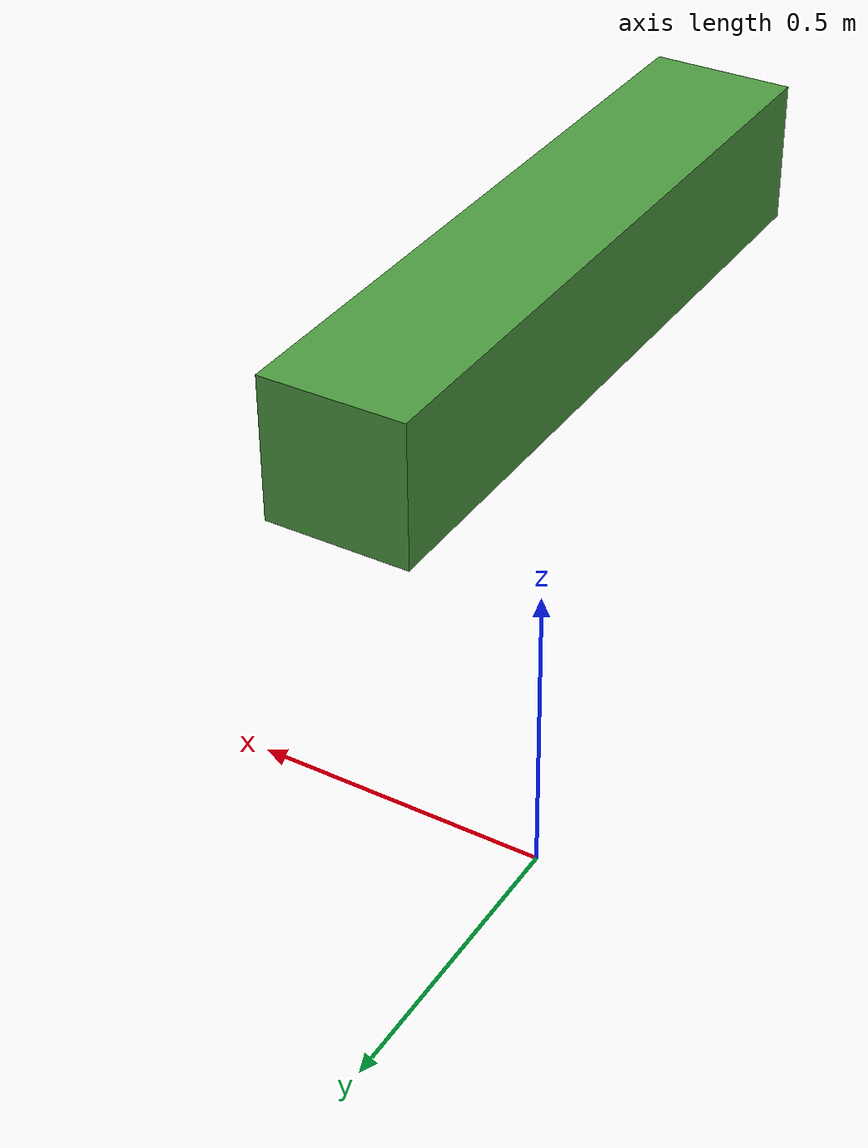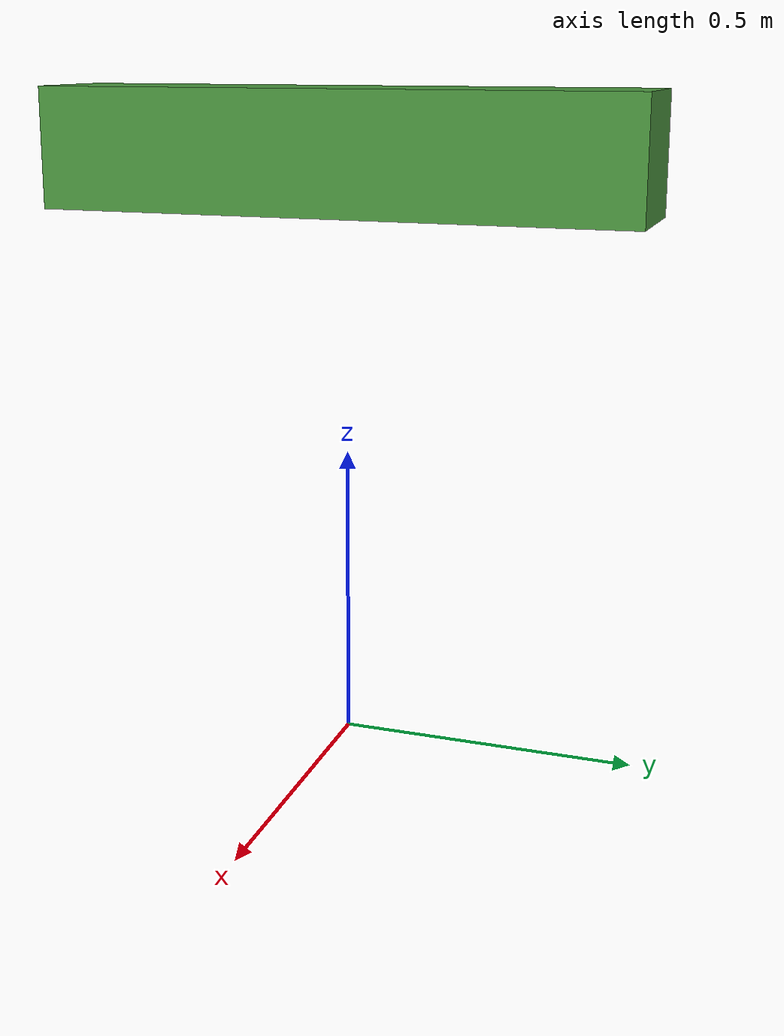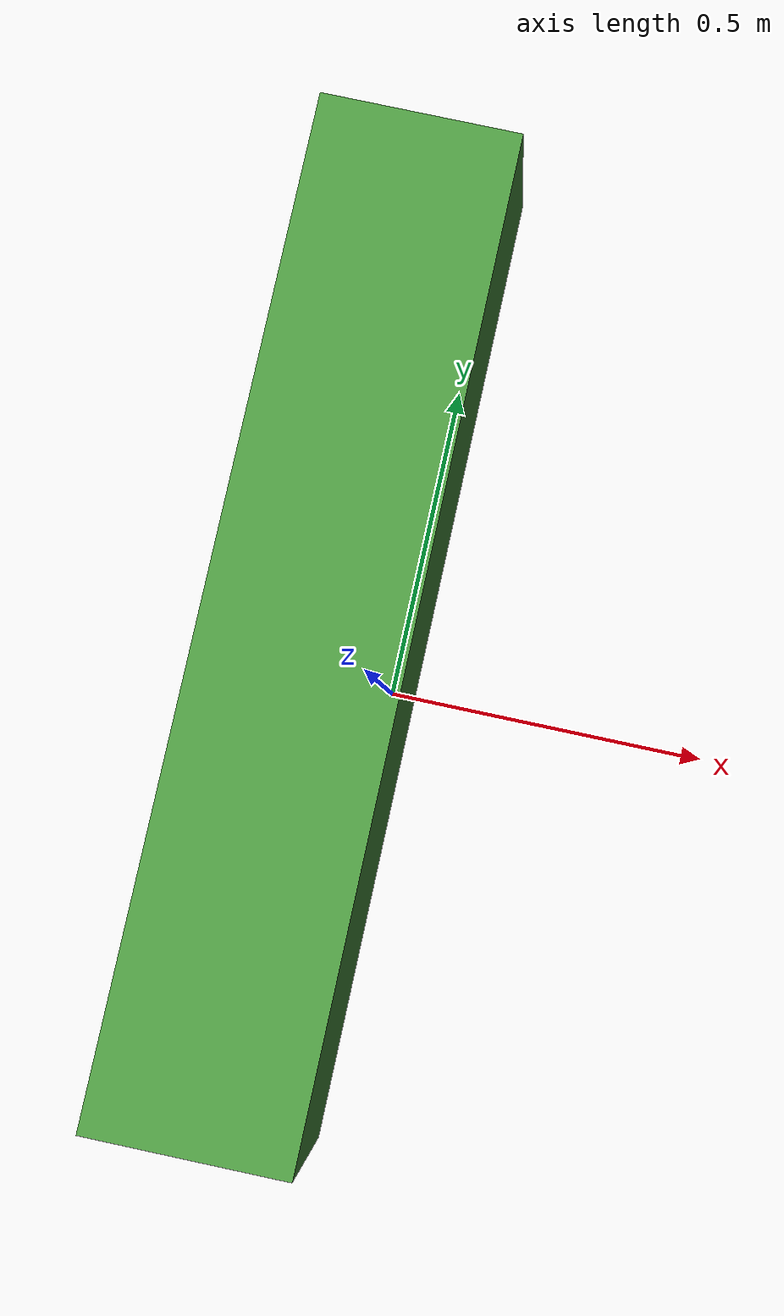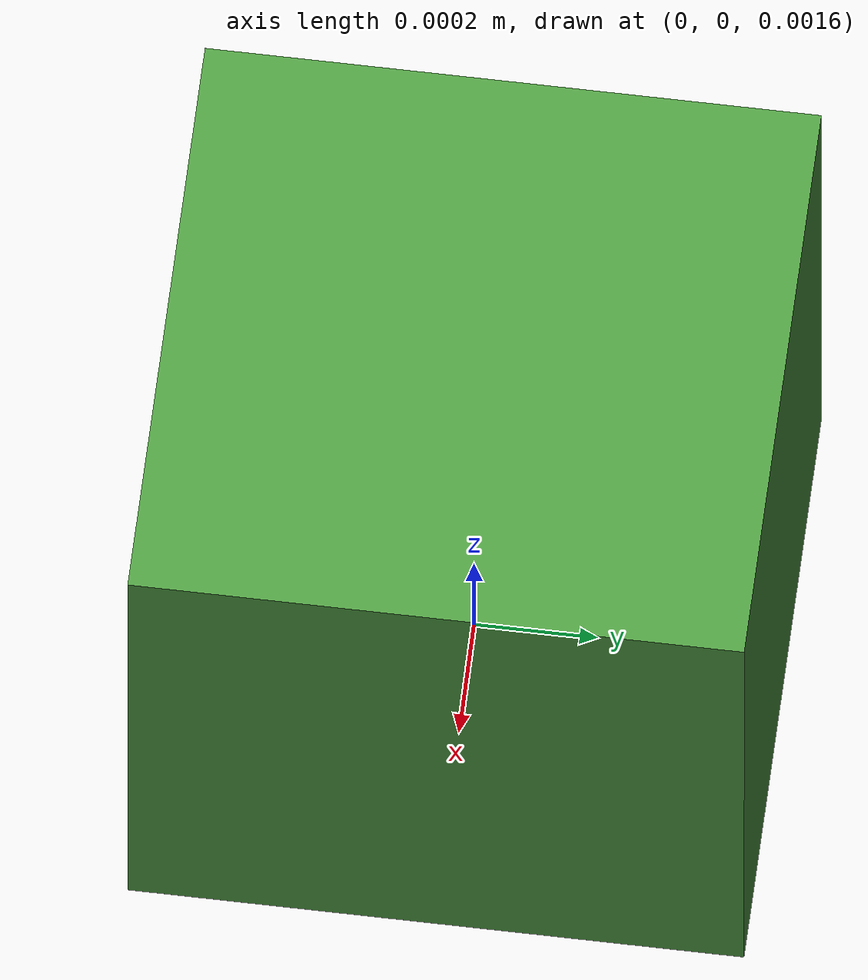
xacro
<?xml version="1.0"?>
<robot name="wrap_limit_joint"
       xmlns:xi="http://www.w3.org/2001/XInclude"
       xmlns:gazebo="http://playerstage.sourceforge.net/gazebo/xmlschema/#gz"
       xmlns:model="http://playerstage.sourceforge.net/gazebo/xmlschema/#model"
       xmlns:sensor="http://playerstage.sourceforge.net/gazebo/xmlschema/#sensor"
       xmlns:body="http://playerstage.sourceforge.net/gazebo/xmlschema/#body"
       xmlns:geom="http://playerstage.sourceforge.net/gazebo/xmlschema/#geom"
       xmlns:joint="http://playerstage.sourceforge.net/gazebo/xmlschema/#joint"
       xmlns:interface="http://playerstage.sourceforge.net/gazebo/xmlschema/#interface"
       xmlns:rendering="http://playerstage.sourceforge.net/gazebo/xmlschema/#rendering"
       xmlns:renderable="http://playerstage.sourceforge.net/gazebo/xmlschema/#renderable"
       xmlns:controller="http://playerstage.sourceforge.net/gazebo/xmlschema/#controller"
       xmlns:physics="http://playerstage.sourceforge.net/gazebo/xmlschema/#physics">

  <!--
       A revolute joint with upper limit at 5*PI and lower is at -PI.
       This configuration is unstable for ode w/o joint limit patch when joint hits +/-PI.
  -->
  <property name="M_PI" value="3.1415926535897931" />
  <link name="world"/>
  <joint name="base_joint" type="fixed">
    <parent link="world" />
    <origin xyz="0 0 0.002 " rpy="0 0 0" />
    <child link="base" />
  </joint>
  <link name="base">
    <inertial>
      <mass value="1000" />
      <origin xyz="0 0 0" />
      <inertia ixx="100"  ixy="0"  ixz="0" iyy="100" iyz="0" izz="100" />
    </inertial>
    <visual>
      <origin xyz="0 0 0" rpy="0 0 0" />
      <geometry>
        <box size="0.001 0.001 0.001" />
      </geometry>
    </visual>
    <collision>
      <origin xyz="0 0 0" rpy="0.0 0.0 0.0" />
      <geometry>
        <box size="0.001 0.001 0.001" />
      </geometry>
    </collision>
  </link>
  <gazebo reference="base">
    <material>Gazebo/GrassFloor</material>
  </gazebo>

  <joint name="link_joint" type="revolute" >
    <limit upper="${5*M_PI}" lower="${-M_PI}" effort="100" velocity="5" />
    <axis xyz="0 0 1" />
    <parent link="base" />
    <origin xyz="0 0 1" rpy="0 0 0" />
    <child link="link" />
    <dynamics damping="0.0" />
  </joint>
  <link name="link">
    <inertial >
      <mass value="10" />
      <origin xyz="0 0 0" />
      <inertia  ixx="1.0" ixy="0.0"  ixz="0.0"  iyy="0.1"  iyz="0.0"  izz="0.1" />
    </inertial>
    <visual >
      <origin xyz="0 0 0" rpy="0 0 0" />
      <geometry>
        <box size="0.2 1.0 0.2" />
      </geometry>
    </visual>
    <collision >
      <origin xyz="0 0 0" rpy="0 0 0" />
      <geometry>
        <box size="0.2 1.0 0.2" />
      </geometry>
    </collision>
  </link>
  <gazebo reference="link">
    <material>Gazebo/GrassFloor</material>
    <turnGravityOff>true</turnGravityOff>
  </gazebo>

  <gazebo>
      <!-- PR2_ACTARRAY -->
      <controller:gazebo_ros_controller_manager name="gazebo_ros_controller_manager" plugin="libgazebo_ros_controller_manager.so">
        <alwaysOn>true</alwaysOn>
        <updateRate>1000.0</updateRate>
        <interface:audio name="gazebo_ros_controller_manager_dummy_iface" />
      </controller:gazebo_ros_controller_manager>

      <!-- gazebo_ros_p3d for position groundtruth -->
      <controller:gazebo_ros_p3d name="p3d_link_controller" plugin="libgazebo_ros_p3d.so">
          <alwaysOn>true</alwaysOn>
          <updateRate>100.0</updateRate>
          <bodyName>link</bodyName>
          <topicName>link_pose</topicName>
          <frameName>map</frameName>
          <interface:position name="p3d_link_position"/>
      </controller:gazebo_ros_p3d>
  </gazebo>

  <!-- mechanism controls -->
  <transmission type="SimpleTransmission" name="link_trans">
    <actuator name="link_motor" />
    <joint name="link_joint" />
    <mechanicalReduction>1</mechanicalReduction>
    <motorTorqueConstant>1</motorTorqueConstant>
  </transmission>

</robot>
